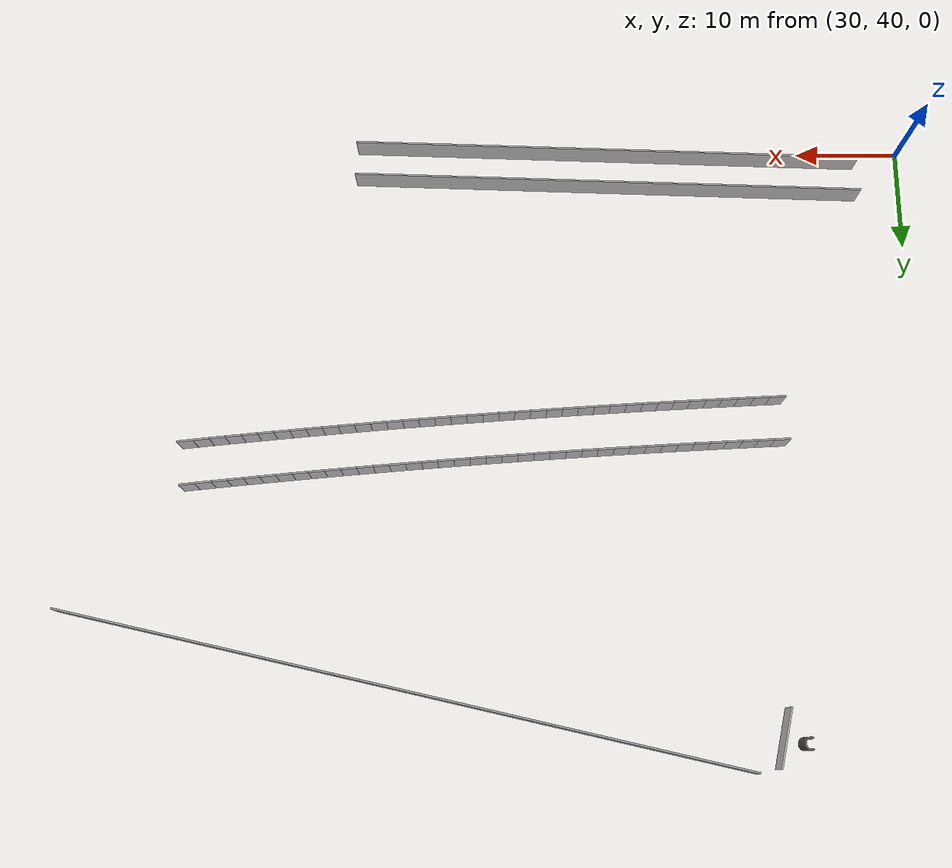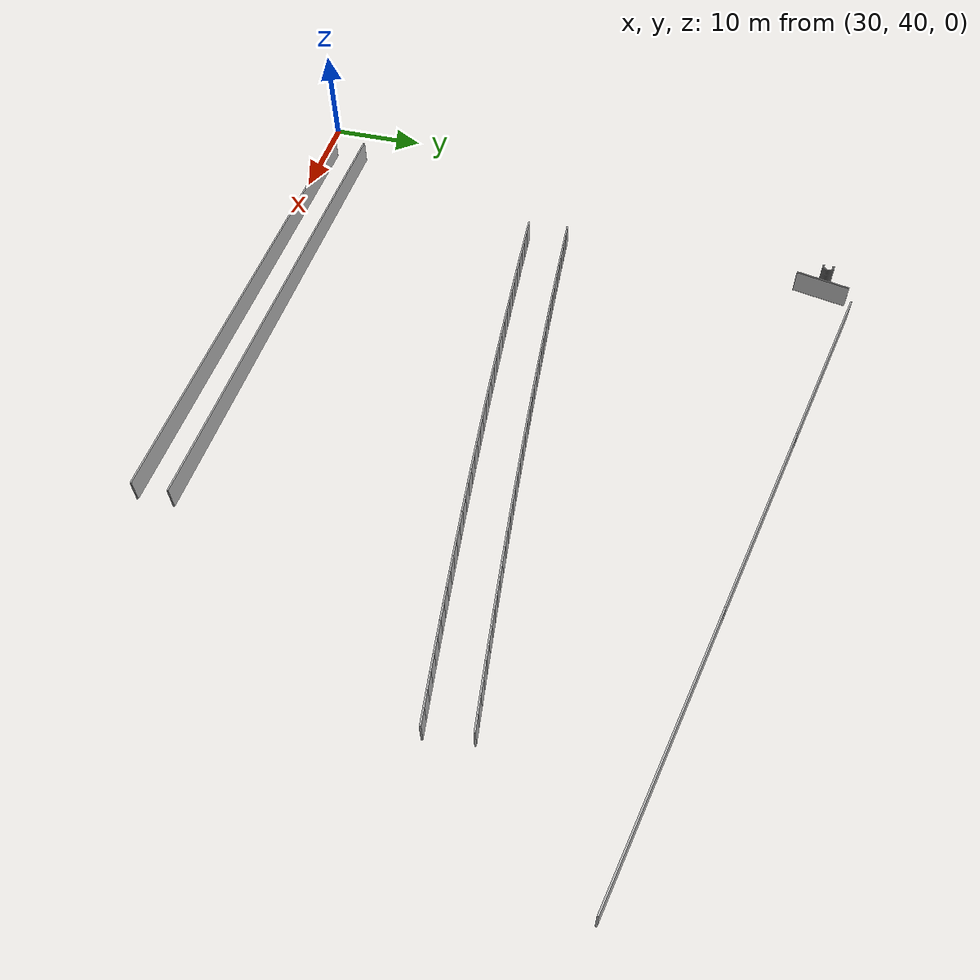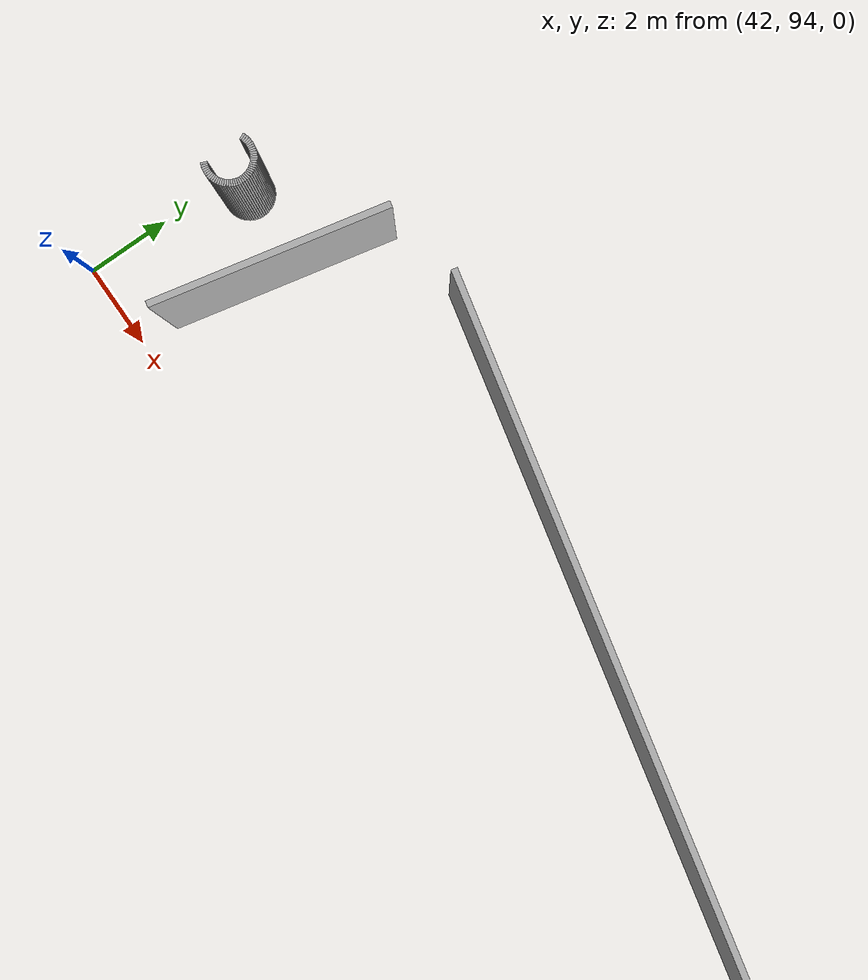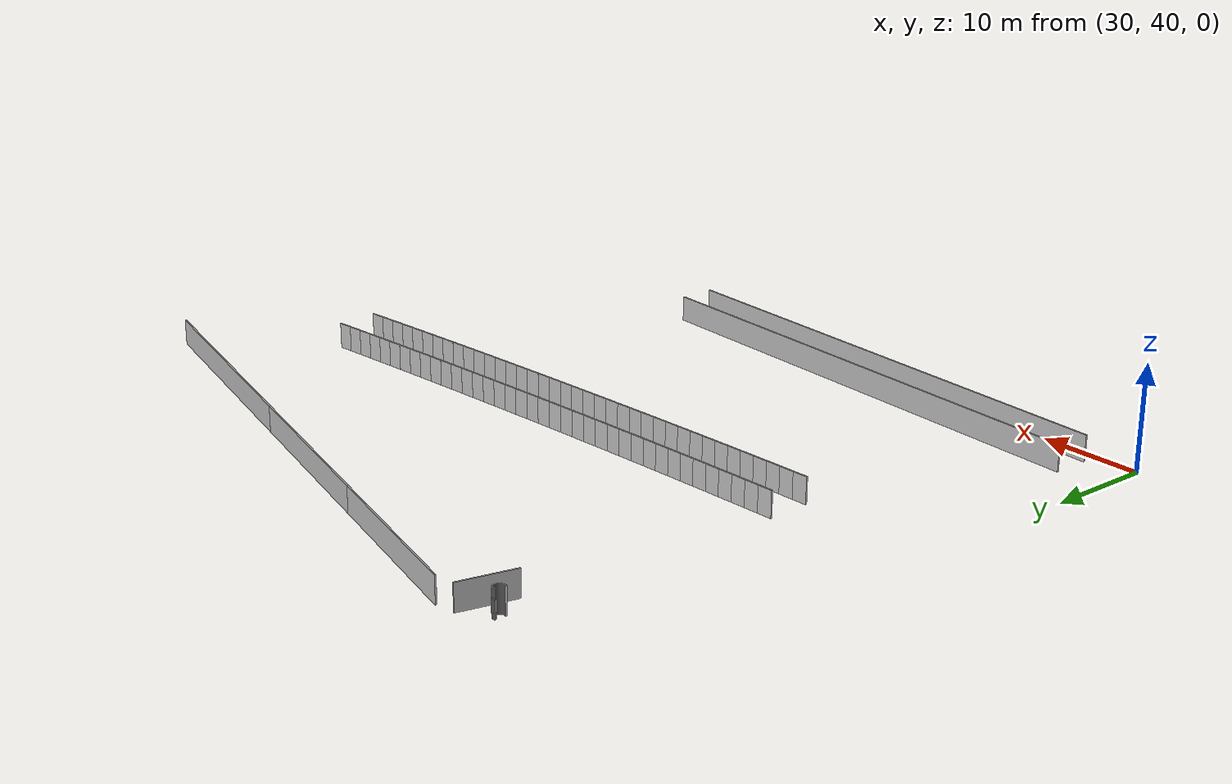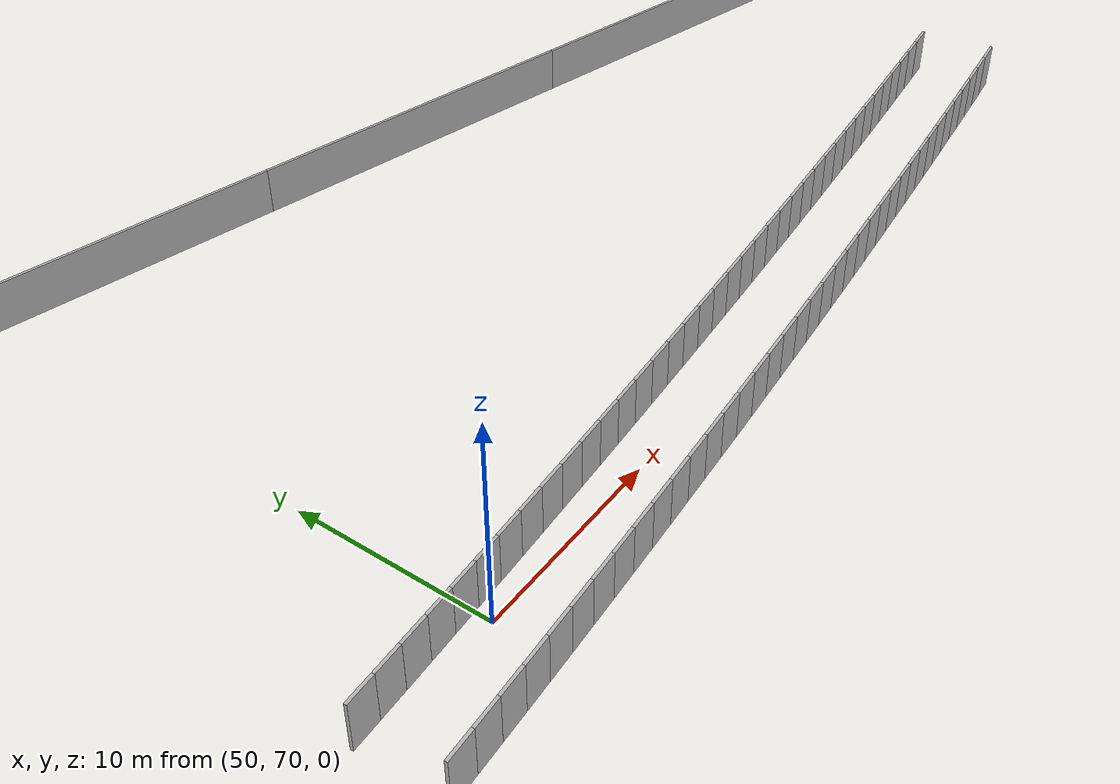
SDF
<sdf version="1.6">
 <model name="sps_1301">
  <static>1</static>
  <allow_auto_disable>0</allow_auto_disable>
  <link name="Wall237">
   <collision name="collision"><geometry><box><size>18.5004 0.15 2.5</size></box></geometry></collision>
   <visual name="visual">
    <geometry><box><size>18.5004 0.15 2.5</size></box></geometry>
    <transparency>0.0</transparency>
   </visual>
   <pose>56.1314 98.5066 1.25 0 0 -0.214248</pose>
  </link>
  <link name="Wall238">
   <collision name="collision"><geometry><box><size>19.751 0.15 2.5</size></box></geometry></collision>
   <visual name="visual">
    <geometry><box><size>19.751 0.15 2.5</size></box></geometry>
    <transparency>0.0</transparency>
   </visual>
   <pose>74.8198 94.4402 1.25 0 0 -0.214253</pose>
  </link>
  <link name="Wall239">
   <collision name="collision"><geometry><box><size>26.0944 0.15 2.5</size></box></geometry></collision>
   <visual name="visual">
    <geometry><box><size>26.0944 0.15 2.5</size></box></geometry>
    <transparency>0.0</transparency>
   </visual>
   <pose>97.2183 89.5664 1.25 0 0 -0.214253</pose>
  </link>
  <link name="Wall461">
   <collision name="collision"><geometry><box><size>50.0165 0.15 2.5</size></box></geometry></collision>
   <visual name="visual">
    <geometry><box><size>50.0165 0.15 2.5</size></box></geometry>
    <transparency>0.0</transparency>
   </visual>
   <pose>59.4694 40.8028 1.25 0 -0 3.11591</pose>
  </link>
  <link name="Wall464">
   <collision name="collision"><geometry><box><size>50.0165 0.15 2.5</size></box></geometry></collision>
   <visual name="visual">
    <geometry><box><size>50.0165 0.15 2.5</size></box></geometry>
    <transparency>0.0</transparency>
   </visual>
   <pose>59.4694 44.3038 1.25 0 0 -0.0256802</pose>
  </link>
  <link name="Wall697">
   <collision name="collision"><geometry><box><size>0.0454008 0.15 2.5</size></box></geometry></collision>
   <visual name="visual">
    <geometry><box><size>0.0454008 0.15 2.5</size></box></geometry>
    <transparency>0.0</transparency>
   </visual>
   <pose>42.9055 98.3673 1.25 0 0 -0.654794</pose>
  </link>
  <link name="Wall698">
   <collision name="collision"><geometry><box><size>0.0452735 0.15 2.5</size></box></geometry></collision>
   <visual name="visual">
    <geometry><box><size>0.0452735 0.15 2.5</size></box></geometry>
    <transparency>0.0</transparency>
   </visual>
   <pose>42.9402 98.3382 1.25 0 0 -0.741533</pose>
  </link>
  <link name="Wall699">
   <collision name="collision"><geometry><box><size>0.0454087 0.15 2.5</size></box></geometry></collision>
   <visual name="visual">
    <geometry><box><size>0.0454087 0.15 2.5</size></box></geometry>
    <transparency>0.0</transparency>
   </visual>
   <pose>42.9722 98.3061 1.25 0 0 -0.831987</pose>
  </link>
  <link name="Wall700">
   <collision name="collision"><geometry><box><size>0.0453637 0.15 2.5</size></box></geometry></collision>
   <visual name="visual">
    <geometry><box><size>0.0453637 0.15 2.5</size></box></geometry>
    <transparency>0.0</transparency>
   </visual>
   <pose>43.0012 98.2713 1.25 0 0 -0.91707</pose>
  </link>
  <link name="Wall701">
   <collision name="collision"><geometry><box><size>0.045342 0.15 2.5</size></box></geometry></collision>
   <visual name="visual">
    <geometry><box><size>0.045342 0.15 2.5</size></box></geometry>
    <transparency>0.0</transparency>
   </visual>
   <pose>43.0272 98.2342 1.25 0 0 -1.00221</pose>
  </link>
  <link name="Wall702">
   <collision name="collision"><geometry><box><size>0.0453724 0.15 2.5</size></box></geometry></collision>
   <visual name="visual">
    <geometry><box><size>0.0453724 0.15 2.5</size></box></geometry>
    <transparency>0.0</transparency>
   </visual>
   <pose>43.0499 98.195 1.25 0 0 -1.0897</pose>
  </link>
  <link name="Wall703">
   <collision name="collision"><geometry><box><size>0.0453827 0.15 2.5</size></box></geometry></collision>
   <visual name="visual">
    <geometry><box><size>0.0453827 0.15 2.5</size></box></geometry>
    <transparency>0.0</transparency>
   </visual>
   <pose>43.0691 98.1539 1.25 0 0 -1.1818</pose>
  </link>
  <link name="Wall704">
   <collision name="collision"><geometry><box><size>0.0453611 0.15 2.5</size></box></geometry></collision>
   <visual name="visual">
    <geometry><box><size>0.0453611 0.15 2.5</size></box></geometry>
    <transparency>0.0</transparency>
   </visual>
   <pose>43.0846 98.1113 1.25 0 0 -1.26181</pose>
  </link>
  <link name="Wall705">
   <collision name="collision"><geometry><box><size>0.0452165 0.15 2.5</size></box></geometry></collision>
   <visual name="visual">
    <geometry><box><size>0.0452165 0.15 2.5</size></box></geometry>
    <transparency>0.0</transparency>
   </visual>
   <pose>43.0962 98.0676 1.25 0 0 -1.35725</pose>
  </link>
  <link name="Wall706">
   <collision name="collision"><geometry><box><size>0.0453869 0.15 2.5</size></box></geometry></collision>
   <visual name="visual">
    <geometry><box><size>0.0453869 0.15 2.5</size></box></geometry>
    <transparency>0.0</transparency>
   </visual>
   <pose>43.1041 98.023 1.25 0 0 -1.43727</pose>
  </link>
  <link name="Wall707">
   <collision name="collision"><geometry><box><size>0.0454521 0.15 2.5</size></box></geometry></collision>
   <visual name="visual">
    <geometry><box><size>0.0454521 0.15 2.5</size></box></geometry>
    <transparency>0.0</transparency>
   </visual>
   <pose>43.1081 97.9778 1.25 0 0 -1.52781</pose>
  </link>
  <link name="Wall708">
   <collision name="collision"><geometry><box><size>0.0452692 0.15 2.5</size></box></geometry></collision>
   <visual name="visual">
    <geometry><box><size>0.0452692 0.15 2.5</size></box></geometry>
    <transparency>0.0</transparency>
   </visual>
   <pose>43.1081 97.9325 1.25 0 0 -1.61395</pose>
  </link>
  <link name="Wall709">
   <collision name="collision"><geometry><box><size>0.0453869 0.15 2.5</size></box></geometry></collision>
   <visual name="visual">
    <geometry><box><size>0.0453869 0.15 2.5</size></box></geometry>
    <transparency>0.0</transparency>
   </visual>
   <pose>43.1041 97.8874 1.25 0 0 -1.70433</pose>
  </link>
  <link name="Wall710">
   <collision name="collision"><geometry><box><size>0.0454345 0.15 2.5</size></box></geometry></collision>
   <visual name="visual">
    <geometry><box><size>0.0454345 0.15 2.5</size></box></geometry>
    <transparency>0.0</transparency>
   </visual>
   <pose>43.0962 97.8427 1.25 0 0 -1.78743</pose>
  </link>
  <link name="Wall711">
   <collision name="collision"><geometry><box><size>0.0453057 0.15 2.5</size></box></geometry></collision>
   <visual name="visual">
    <geometry><box><size>0.0453057 0.15 2.5</size></box></geometry>
    <transparency>0.0</transparency>
   </visual>
   <pose>43.0845 97.7989 1.25 0 0 -1.87593</pose>
  </link>
  <link name="Wall712">
   <collision name="collision"><geometry><box><size>0.0454525 0.15 2.5</size></box></geometry></collision>
   <visual name="visual">
    <geometry><box><size>0.0454525 0.15 2.5</size></box></geometry>
    <transparency>0.0</transparency>
   </visual>
   <pose>43.069 97.7563 1.25 0 0 -1.96352</pose>
  </link>
  <link name="Wall713">
   <collision name="collision"><geometry><box><size>0.0453724 0.15 2.5</size></box></geometry></collision>
   <visual name="visual">
    <geometry><box><size>0.0453724 0.15 2.5</size></box></geometry>
    <transparency>0.0</transparency>
   </visual>
   <pose>43.0498 97.7152 1.25 0 0 -2.05189</pose>
  </link>
  <link name="Wall714">
   <collision name="collision"><geometry><box><size>0.045342 0.15 2.5</size></box></geometry></collision>
   <visual name="visual">
    <geometry><box><size>0.045342 0.15 2.5</size></box></geometry>
    <transparency>0.0</transparency>
   </visual>
   <pose>43.0271 97.676 1.25 0 0 -2.13938</pose>
  </link>
  <link name="Wall715">
   <collision name="collision"><geometry><box><size>0.0453637 0.15 2.5</size></box></geometry></collision>
   <visual name="visual">
    <geometry><box><size>0.0453637 0.15 2.5</size></box></geometry>
    <transparency>0.0</transparency>
   </visual>
   <pose>43.0011 97.6389 1.25 0 0 -2.22452</pose>
  </link>
  <link name="Wall716">
   <collision name="collision"><geometry><box><size>0.0453148 0.15 2.5</size></box></geometry></collision>
   <visual name="visual">
    <geometry><box><size>0.0453148 0.15 2.5</size></box></geometry>
    <transparency>0.0</transparency>
   </visual>
   <pose>42.9719 97.6042 1.25 0 0 -2.31332</pose>
  </link>
  <link name="Wall717">
   <collision name="collision"><geometry><box><size>0.0453974 0.15 2.5</size></box></geometry></collision>
   <visual name="visual">
    <geometry><box><size>0.0453974 0.15 2.5</size></box></geometry>
    <transparency>0.0</transparency>
   </visual>
   <pose>42.9399 97.5721 1.25 0 0 -2.39709</pose>
  </link>
  <link name="Wall718">
   <collision name="collision"><geometry><box><size>0.0454008 0.15 2.5</size></box></geometry></collision>
   <visual name="visual">
    <geometry><box><size>0.0454008 0.15 2.5</size></box></geometry>
    <transparency>0.0</transparency>
   </visual>
   <pose>42.9052 97.5429 1.25 0 0 -2.4868</pose>
  </link>
  <link name="Wall719">
   <collision name="collision"><geometry><box><size>0.0453659 0.15 2.5</size></box></geometry></collision>
   <visual name="visual">
    <geometry><box><size>0.0453659 0.15 2.5</size></box></geometry>
    <transparency>0.0</transparency>
   </visual>
   <pose>42.868 97.517 1.25 0 0 -2.57971</pose>
  </link>
  <link name="Wall720">
   <collision name="collision"><geometry><box><size>0.0453183 0.15 2.5</size></box></geometry></collision>
   <visual name="visual">
    <geometry><box><size>0.0453183 0.15 2.5</size></box></geometry>
    <transparency>0.0</transparency>
   </visual>
   <pose>42.8288 97.4944 1.25 0 0 -2.65987</pose>
  </link>
  <link name="Wall721">
   <collision name="collision"><geometry><box><size>0.0454525 0.15 2.5</size></box></geometry></collision>
   <visual name="visual">
    <geometry><box><size>0.0454525 0.15 2.5</size></box></geometry>
    <transparency>0.0</transparency>
   </visual>
   <pose>42.7877 97.4752 1.25 0 0 -2.74887</pose>
  </link>
  <link name="Wall722">
   <collision name="collision"><geometry><box><size>0.0453057 0.15 2.5</size></box></geometry></collision>
   <visual name="visual">
    <geometry><box><size>0.0453057 0.15 2.5</size></box></geometry>
    <transparency>0.0</transparency>
   </visual>
   <pose>42.7451 97.4597 1.25 0 0 -2.83646</pose>
  </link>
  <link name="Wall723">
   <collision name="collision"><geometry><box><size>0.0452689 0.15 2.5</size></box></geometry></collision>
   <visual name="visual">
    <geometry><box><size>0.0452689 0.15 2.5</size></box></geometry>
    <transparency>0.0</transparency>
   </visual>
   <pose>42.7014 97.448 1.25 0 0 -2.92278</pose>
  </link>
  <link name="Wall724">
   <collision name="collision"><geometry><box><size>0.0454156 0.15 2.5</size></box></geometry></collision>
   <visual name="visual">
    <geometry><box><size>0.0454156 0.15 2.5</size></box></geometry>
    <transparency>0.0</transparency>
   </visual>
   <pose>42.6568 97.4402 1.25 0 0 -3.01357</pose>
  </link>
  <link name="Wall725">
   <collision name="collision"><geometry><box><size>0.0454521 0.15 2.5</size></box></geometry></collision>
   <visual name="visual">
    <geometry><box><size>0.0454521 0.15 2.5</size></box></geometry>
    <transparency>0.0</transparency>
   </visual>
   <pose>42.6115 97.4363 1.25 0 0 -3.09861</pose>
  </link>
  <link name="Wall726">
   <collision name="collision"><geometry><box><size>0.0452082 0.15 2.5</size></box></geometry></collision>
   <visual name="visual">
    <geometry><box><size>0.0452082 0.15 2.5</size></box></geometry>
    <transparency>0.0</transparency>
   </visual>
   <pose>42.5662 97.4363 1.25 0 -0 3.09838</pose>
  </link>
  <link name="Wall727">
   <collision name="collision"><geometry><box><size>0.0453551 0.15 2.5</size></box></geometry></collision>
   <visual name="visual">
    <geometry><box><size>0.0453551 0.15 2.5</size></box></geometry>
    <transparency>0.0</transparency>
   </visual>
   <pose>42.5212 97.4402 1.25 0 -0 3.0134</pose>
  </link>
  <link name="Wall728">
   <collision name="collision"><geometry><box><size>0.0455471 0.15 2.5</size></box></geometry></collision>
   <visual name="visual">
    <geometry><box><size>0.0455471 0.15 2.5</size></box></geometry>
    <transparency>0.0</transparency>
   </visual>
   <pose>42.4765 97.4481 1.25 0 -0 2.92002</pose>
  </link>
  <link name="Wall729">
   <collision name="collision"><geometry><box><size>0.0453057 0.15 2.5</size></box></geometry></collision>
   <visual name="visual">
    <geometry><box><size>0.0453057 0.15 2.5</size></box></geometry>
    <transparency>0.0</transparency>
   </visual>
   <pose>42.4326 97.4599 1.25 0 -0 2.83646</pose>
  </link>
  <link name="Wall730">
   <collision name="collision"><geometry><box><size>0.0454525 0.15 2.5</size></box></geometry></collision>
   <visual name="visual">
    <geometry><box><size>0.0454525 0.15 2.5</size></box></geometry>
    <transparency>0.0</transparency>
   </visual>
   <pose>42.39 97.4754 1.25 0 -0 2.74887</pose>
  </link>
  <link name="Wall757">
   <collision name="collision"><geometry><box><size>0.0453069 0.15 2.5</size></box></geometry></collision>
   <visual name="visual">
    <geometry><box><size>0.0453069 0.15 2.5</size></box></geometry>
    <transparency>0.0</transparency>
   </visual>
   <pose>42.3904 98.4352 1.25 0 -0 0.395517</pose>
  </link>
  <link name="Wall758">
   <collision name="collision"><geometry><box><size>0.0454622 0.15 2.5</size></box></geometry></collision>
   <visual name="visual">
    <geometry><box><size>0.0454622 0.15 2.5</size></box></geometry>
    <transparency>0.0</transparency>
   </visual>
   <pose>42.433 98.4507 1.25 0 -0 0.302645</pose>
  </link>
  <link name="Wall759">
   <collision name="collision"><geometry><box><size>0.0452689 0.15 2.5</size></box></geometry></collision>
   <visual name="visual">
    <geometry><box><size>0.0452689 0.15 2.5</size></box></geometry>
    <transparency>0.0</transparency>
   </visual>
   <pose>42.4768 98.4624 1.25 0 -0 0.218815</pose>
  </link>
  <link name="Wall760">
   <collision name="collision"><geometry><box><size>0.0453788 0.15 2.5</size></box></geometry></collision>
   <visual name="visual">
    <geometry><box><size>0.0453788 0.15 2.5</size></box></geometry>
    <transparency>0.0</transparency>
   </visual>
   <pose>42.5214 98.4703 1.25 0 -0 0.132196</pose>
  </link>
  <link name="Wall761">
   <collision name="collision"><geometry><box><size>0.0454548 0.15 2.5</size></box></geometry></collision>
   <visual name="visual">
    <geometry><box><size>0.0454548 0.15 2.5</size></box></geometry>
    <transparency>0.0</transparency>
   </visual>
   <pose>42.5666 98.4743 1.25 0 -0 0.0443258</pose>
  </link>
  <link name="Wall762">
   <collision name="collision"><geometry><box><size>0.0452719 0.15 2.5</size></box></geometry></collision>
   <visual name="visual">
    <geometry><box><size>0.0452719 0.15 2.5</size></box></geometry>
    <transparency>0.0</transparency>
   </visual>
   <pose>42.6119 98.4743 1.25 0 0 -0.044505</pose>
  </link>
  <link name="Wall763">
   <collision name="collision"><geometry><box><size>0.0453788 0.15 2.5</size></box></geometry></collision>
   <visual name="visual">
    <geometry><box><size>0.0453788 0.15 2.5</size></box></geometry>
    <transparency>0.0</transparency>
   </visual>
   <pose>42.657 98.4703 1.25 0 0 -0.132196</pose>
  </link>
  <link name="Wall764">
   <collision name="collision"><geometry><box><size>0.0454476 0.15 2.5</size></box></geometry></collision>
   <visual name="visual">
    <geometry><box><size>0.0454476 0.15 2.5</size></box></geometry>
    <transparency>0.0</transparency>
   </visual>
   <pose>42.7017 98.4624 1.25 0 0 -0.217941</pose>
  </link>
  <link name="Wall765">
   <collision name="collision"><geometry><box><size>0.0452874 0.15 2.5</size></box></geometry></collision>
   <visual name="visual">
    <geometry><box><size>0.0452874 0.15 2.5</size></box></geometry>
    <transparency>0.0</transparency>
   </visual>
   <pose>42.7454 98.4507 1.25 0 0 -0.30385</pose>
  </link>
  <link name="Wall766">
   <collision name="collision"><geometry><box><size>0.0453069 0.15 2.5</size></box></geometry></collision>
   <visual name="visual">
    <geometry><box><size>0.0453069 0.15 2.5</size></box></geometry>
    <transparency>0.0</transparency>
   </visual>
   <pose>42.788 98.4352 1.25 0 0 -0.395517</pose>
  </link>
  <link name="Wall767">
   <collision name="collision"><geometry><box><size>0.0455348 0.15 2.5</size></box></geometry></collision>
   <visual name="visual">
    <geometry><box><size>0.0455348 0.15 2.5</size></box></geometry>
    <transparency>0.0</transparency>
   </visual>
   <pose>42.8291 98.416 1.25 0 0 -0.479234</pose>
  </link>
  <link name="Wall768">
   <collision name="collision"><geometry><box><size>0.0453092 0.15 2.5</size></box></geometry></collision>
   <visual name="visual">
    <geometry><box><size>0.0453092 0.15 2.5</size></box></geometry>
    <transparency>0.0</transparency>
   </visual>
   <pose>42.8684 98.3933 1.25 0 0 -0.567452</pose>
  </link>
  <link name="Wall987">
   <collision name="collision"><geometry><box><size>5.43506 0.15 2.5</size></box></geometry></collision>
   <visual name="visual">
    <geometry><box><size>5.43506 0.15 2.5</size></box></geometry>
    <transparency>0.0</transparency>
   </visual>
   <pose>44.6872 97.5127 1.25 0 0 -1.78505</pose>
  </link>
  <link name="Wall3740">
   <collision name="collision"><geometry><box><size>1.49639 0.15 2.5</size></box></geometry></collision>
   <visual name="visual">
    <geometry><box><size>1.49639 0.15 2.5</size></box></geometry>
    <transparency>0.0</transparency>
   </visual>
   <pose>43.5595 70.548 1.25 0 -0 0.0563175</pose>
  </link>
  <link name="Wall3741">
   <collision name="collision"><geometry><box><size>1.49648 0.15 2.5</size></box></geometry></collision>
   <visual name="visual">
    <geometry><box><size>1.49648 0.15 2.5</size></box></geometry>
    <transparency>0.0</transparency>
   </visual>
   <pose>45.0535 70.6335 1.25 0 -0 0.0580301</pose>
  </link>
  <link name="Wall3742">
   <collision name="collision"><geometry><box><size>1.49648 0.15 2.5</size></box></geometry></collision>
   <visual name="visual">
    <geometry><box><size>1.49648 0.15 2.5</size></box></geometry>
    <transparency>0.0</transparency>
   </visual>
   <pose>46.5474 70.7214 1.25 0 -0 0.0595007</pose>
  </link>
  <link name="Wall3743">
   <collision name="collision"><geometry><box><size>1.49676 0.15 2.5</size></box></geometry></collision>
   <visual name="visual">
    <geometry><box><size>1.49676 0.15 2.5</size></box></geometry>
    <transparency>0.0</transparency>
   </visual>
   <pose>48.0413 70.8117 1.25 0 -0 0.0612462</pose>
  </link>
  <link name="Wall3744">
   <collision name="collision"><geometry><box><size>1.49635 0.15 2.5</size></box></geometry></collision>
   <visual name="visual">
    <geometry><box><size>1.49635 0.15 2.5</size></box></geometry>
    <transparency>0.0</transparency>
   </visual>
   <pose>49.5349 70.9044 1.25 0 -0 0.0627343</pose>
  </link>
  <link name="Wall3745">
   <collision name="collision"><geometry><box><size>1.49669 0.15 2.5</size></box></geometry></collision>
   <visual name="visual">
    <geometry><box><size>1.49669 0.15 2.5</size></box></geometry>
    <transparency>0.0</transparency>
   </visual>
   <pose>51.0284 70.9994 1.25 0 -0 0.0643139</pose>
  </link>
  <link name="Wall3746">
   <collision name="collision"><geometry><box><size>1.49646 0.15 2.5</size></box></geometry></collision>
   <visual name="visual">
    <geometry><box><size>1.49646 0.15 2.5</size></box></geometry>
    <transparency>0.0</transparency>
   </visual>
   <pose>52.5218 71.0967 1.25 0 -0 0.0657949</pose>
  </link>
  <link name="Wall3747">
   <collision name="collision"><geometry><box><size>1.49663 0.15 2.5</size></box></geometry></collision>
   <visual name="visual">
    <geometry><box><size>1.49663 0.15 2.5</size></box></geometry>
    <transparency>0.0</transparency>
   </visual>
   <pose>54.0151 71.1963 1.25 0 -0 0.0674227</pose>
  </link>
  <link name="Wall3748">
   <collision name="collision"><geometry><box><size>1.49654 0.15 2.5</size></box></geometry></collision>
   <visual name="visual">
    <geometry><box><size>1.49654 0.15 2.5</size></box></geometry>
    <transparency>0.0</transparency>
   </visual>
   <pose>55.5082 71.2983 1.25 0 -0 0.06898</pose>
  </link>
  <link name="Wall3749">
   <collision name="collision"><geometry><box><size>1.49636 0.15 2.5</size></box></geometry></collision>
   <visual name="visual">
    <geometry><box><size>1.49636 0.15 2.5</size></box></geometry>
    <transparency>0.0</transparency>
   </visual>
   <pose>57.001 71.4028 1.25 0 -0 0.0707873</pose>
  </link>
  <link name="Wall3750">
   <collision name="collision"><geometry><box><size>1.49645 0.15 2.5</size></box></geometry></collision>
   <visual name="visual">
    <geometry><box><size>1.49645 0.15 2.5</size></box></geometry>
    <transparency>0.0</transparency>
   </visual>
   <pose>58.4936 71.5097 1.25 0 -0 0.0722141</pose>
  </link>
  <link name="Wall3751">
   <collision name="collision"><geometry><box><size>1.49669 0.15 2.5</size></box></geometry></collision>
   <visual name="visual">
    <geometry><box><size>1.49669 0.15 2.5</size></box></geometry>
    <transparency>0.0</transparency>
   </visual>
   <pose>59.9861 71.6189 1.25 0 -0 0.0738381</pose>
  </link>
  <link name="Wall3752">
   <collision name="collision"><geometry><box><size>1.49643 0.15 2.5</size></box></geometry></collision>
   <visual name="visual">
    <geometry><box><size>1.49643 0.15 2.5</size></box></geometry>
    <transparency>0.0</transparency>
   </visual>
   <pose>61.4785 71.7304 1.25 0 -0 0.0753235</pose>
  </link>
  <link name="Wall3753">
   <collision name="collision"><geometry><box><size>1.49669 0.15 2.5</size></box></geometry></collision>
   <visual name="visual">
    <geometry><box><size>1.49669 0.15 2.5</size></box></geometry>
    <transparency>0.0</transparency>
   </visual>
   <pose>62.9708 71.8443 1.25 0 -0 0.0770284</pose>
  </link>
  <link name="Wall3754">
   <collision name="collision"><geometry><box><size>1.49638 0.15 2.5</size></box></geometry></collision>
   <visual name="visual">
    <geometry><box><size>1.49638 0.15 2.5</size></box></geometry>
    <transparency>0.0</transparency>
   </visual>
   <pose>64.4628 71.9606 1.25 0 -0 0.0785582</pose>
  </link>
  <link name="Wall3755">
   <collision name="collision"><geometry><box><size>1.49662 0.15 2.5</size></box></geometry></collision>
   <visual name="visual">
    <geometry><box><size>1.49662 0.15 2.5</size></box></geometry>
    <transparency>0.0</transparency>
   </visual>
   <pose>65.9546 72.0792 1.25 0 -0 0.0801406</pose>
  </link>
  <link name="Wall3756">
   <collision name="collision"><geometry><box><size>1.49659 0.15 2.5</size></box></geometry></collision>
   <visual name="visual">
    <geometry><box><size>1.49659 0.15 2.5</size></box></geometry>
    <transparency>0.0</transparency>
   </visual>
   <pose>67.4463 72.2003 1.25 0 -0 0.081861</pose>
  </link>
  <link name="Wall3757">
   <collision name="collision"><geometry><box><size>1.49657 0.15 2.5</size></box></geometry></collision>
   <visual name="visual">
    <geometry><box><size>1.49657 0.15 2.5</size></box></geometry>
    <transparency>0.0</transparency>
   </visual>
   <pose>68.9377 72.3237 1.25 0 -0 0.0832124</pose>
  </link>
  <link name="Wall3758">
   <collision name="collision"><geometry><box><size>1.49661 0.15 2.5</size></box></geometry></collision>
   <visual name="visual">
    <geometry><box><size>1.49661 0.15 2.5</size></box></geometry>
    <transparency>0.0</transparency>
   </visual>
   <pose>70.429 72.4494 1.25 0 -0 0.0849701</pose>
  </link>
  <link name="Wall3759">
   <collision name="collision"><geometry><box><size>1.49637 0.15 2.5</size></box></geometry></collision>
   <visual name="visual">
    <geometry><box><size>1.49637 0.15 2.5</size></box></geometry>
    <transparency>0.0</transparency>
   </visual>
   <pose>71.92 72.5775 1.25 0 -0 0.0864574</pose>
  </link>
  <link name="Wall3760">
   <collision name="collision"><geometry><box><size>1.49664 0.15 2.5</size></box></geometry></collision>
   <visual name="visual">
    <geometry><box><size>1.49664 0.15 2.5</size></box></geometry>
    <transparency>0.0</transparency>
   </visual>
   <pose>73.4108 72.7079 1.25 0 -0 0.0880384</pose>
  </link>
  <link name="Wall3761">
   <collision name="collision"><geometry><box><size>1.49661 0.15 2.5</size></box></geometry></collision>
   <visual name="visual">
    <geometry><box><size>1.49661 0.15 2.5</size></box></geometry>
    <transparency>0.0</transparency>
   </visual>
   <pose>74.9016 72.8407 1.25 0 -0 0.0896371</pose>
  </link>
  <link name="Wall3762">
   <collision name="collision"><geometry><box><size>1.49659 0.15 2.5</size></box></geometry></collision>
   <visual name="visual">
    <geometry><box><size>1.49659 0.15 2.5</size></box></geometry>
    <transparency>0.0</transparency>
   </visual>
   <pose>76.3921 72.9759 1.25 0 -0 0.0912765</pose>
  </link>
  <link name="Wall3763">
   <collision name="collision"><geometry><box><size>1.49648 0.15 2.5</size></box></geometry></collision>
   <visual name="visual">
    <geometry><box><size>1.49648 0.15 2.5</size></box></geometry>
    <transparency>0.0</transparency>
   </visual>
   <pose>77.8823 73.1134 1.25 0 -0 0.0927573</pose>
  </link>
  <link name="Wall3764">
   <collision name="collision"><geometry><box><size>1.49642 0.15 2.5</size></box></geometry></collision>
   <visual name="visual">
    <geometry><box><size>1.49642 0.15 2.5</size></box></geometry>
    <transparency>0.0</transparency>
   </visual>
   <pose>79.3722 73.2533 1.25 0 -0 0.0944819</pose>
  </link>
  <link name="Wall3765">
   <collision name="collision"><geometry><box><size>1.49651 0.15 2.5</size></box></geometry></collision>
   <visual name="visual">
    <geometry><box><size>1.49651 0.15 2.5</size></box></geometry>
    <transparency>0.0</transparency>
   </visual>
   <pose>80.8618 73.3956 1.25 0 -0 0.0959919</pose>
  </link>
  <link name="Wall3766">
   <collision name="collision"><geometry><box><size>1.4965 0.15 2.5</size></box></geometry></collision>
   <visual name="visual">
    <geometry><box><size>1.4965 0.15 2.5</size></box></geometry>
    <transparency>0.0</transparency>
   </visual>
   <pose>82.3513 73.5402 1.25 0 -0 0.0975908</pose>
  </link>
  <link name="Wall3767">
   <collision name="collision"><geometry><box><size>1.49655 0.15 2.5</size></box></geometry></collision>
   <visual name="visual">
    <geometry><box><size>1.49655 0.15 2.5</size></box></geometry>
    <transparency>0.0</transparency>
   </visual>
   <pose>83.8406 73.6872 1.25 0 -0 0.0991857</pose>
  </link>
  <link name="Wall3768">
   <collision name="collision"><geometry><box><size>1.49661 0.15 2.5</size></box></geometry></collision>
   <visual name="visual">
    <geometry><box><size>1.49661 0.15 2.5</size></box></geometry>
    <transparency>0.0</transparency>
   </visual>
   <pose>85.3297 73.8366 1.25 0 -0 0.100781</pose>
  </link>
  <link name="Wall3769">
   <collision name="collision"><geometry><box><size>1.49641 0.15 2.5</size></box></geometry></collision>
   <visual name="visual">
    <geometry><box><size>1.49641 0.15 2.5</size></box></geometry>
    <transparency>0.0</transparency>
   </visual>
   <pose>86.8185 73.9883 1.25 0 -0 0.102311</pose>
  </link>
  <link name="Wall3770">
   <collision name="collision"><geometry><box><size>1.49647 0.15 2.5</size></box></geometry></collision>
   <visual name="visual">
    <geometry><box><size>1.49647 0.15 2.5</size></box></geometry>
    <transparency>0.0</transparency>
   </visual>
   <pose>88.307 74.1423 1.25 0 -0 0.103865</pose>
  </link>
  <link name="Wall3771">
   <collision name="collision"><geometry><box><size>1.49655 0.15 2.5</size></box></geometry></collision>
   <visual name="visual">
    <geometry><box><size>1.49655 0.15 2.5</size></box></geometry>
    <transparency>0.0</transparency>
   </visual>
   <pose>89.7953 74.2987 1.25 0 -0 0.105541</pose>
  </link>
  <link name="Wall3772">
   <collision name="collision"><geometry><box><size>1.49653 0.15 2.5</size></box></geometry></collision>
   <visual name="visual">
    <geometry><box><size>1.49653 0.15 2.5</size></box></geometry>
    <transparency>0.0</transparency>
   </visual>
   <pose>91.2834 74.4574 1.25 0 -0 0.106978</pose>
  </link>
  <link name="Wall3773">
   <collision name="collision"><geometry><box><size>1.49669 0.15 2.5</size></box></geometry></collision>
   <visual name="visual">
    <geometry><box><size>1.49669 0.15 2.5</size></box></geometry>
    <transparency>0.0</transparency>
   </visual>
   <pose>92.7714 74.6185 1.25 0 -0 0.10873</pose>
  </link>
  <link name="Wall3774">
   <collision name="collision"><geometry><box><size>1.49644 0.15 2.5</size></box></geometry></collision>
   <visual name="visual">
    <geometry><box><size>1.49644 0.15 2.5</size></box></geometry>
    <transparency>0.0</transparency>
   </visual>
   <pose>94.259 74.782 1.25 0 -0 0.110184</pose>
  </link>
  <link name="Wall3775">
   <collision name="collision"><geometry><box><size>1.49653 0.15 2.5</size></box></geometry></collision>
   <visual name="visual">
    <geometry><box><size>1.49653 0.15 2.5</size></box></geometry>
    <transparency>0.0</transparency>
   </visual>
   <pose>95.7462 74.9478 1.25 0 -0 0.111819</pose>
  </link>
  <link name="Wall3776">
   <collision name="collision"><geometry><box><size>1.49662 0.15 2.5</size></box></geometry></collision>
   <visual name="visual">
    <geometry><box><size>1.49662 0.15 2.5</size></box></geometry>
    <transparency>0.0</transparency>
   </visual>
   <pose>97.2333 75.116 1.25 0 -0 0.113454</pose>
  </link>
  <link name="Wall3777">
   <collision name="collision"><geometry><box><size>1.49653 0.15 2.5</size></box></geometry></collision>
   <visual name="visual">
    <geometry><box><size>1.49653 0.15 2.5</size></box></geometry>
    <transparency>0.0</transparency>
   </visual>
   <pose>98.7201 75.2866 1.25 0 -0 0.115062</pose>
  </link>
  <link name="Wall7515">
   <collision name="collision"><geometry><box><size>1.50294 0.15 2.5</size></box></geometry></collision>
   <visual name="visual">
    <geometry><box><size>1.50294 0.15 2.5</size></box></geometry>
    <transparency>0.0</transparency>
   </visual>
   <pose>43.796 66.4143 1.25 0 -0 0.0564379</pose>
  </link>
  <link name="Wall7516">
   <collision name="collision"><geometry><box><size>1.50313 0.15 2.5</size></box></geometry></collision>
   <visual name="visual">
    <geometry><box><size>1.50313 0.15 2.5</size></box></geometry>
    <transparency>0.0</transparency>
   </visual>
   <pose>45.2965 66.5002 1.25 0 -0 0.0579356</pose>
  </link>
  <link name="Wall7517">
   <collision name="collision"><geometry><box><size>1.50328 0.15 2.5</size></box></geometry></collision>
   <visual name="visual">
    <geometry><box><size>1.50328 0.15 2.5</size></box></geometry>
    <transparency>0.0</transparency>
   </visual>
   <pose>46.7971 66.5885 1.25 0 -0 0.059638</pose>
  </link>
  <link name="Wall7518">
   <collision name="collision"><geometry><box><size>1.503 0.15 2.5</size></box></geometry></collision>
   <visual name="visual">
    <geometry><box><size>1.503 0.15 2.5</size></box></geometry>
    <transparency>0.0</transparency>
   </visual>
   <pose>48.2975 66.6793 1.25 0 -0 0.0612358</pose>
  </link>
  <link name="Wall7519">
   <collision name="collision"><geometry><box><size>1.5032 0.15 2.5</size></box></geometry></collision>
   <visual name="visual">
    <geometry><box><size>1.5032 0.15 2.5</size></box></geometry>
    <transparency>0.0</transparency>
   </visual>
   <pose>49.7978 66.7724 1.25 0 -0 0.0626924</pose>
  </link>
  <link name="Wall7520">
   <collision name="collision"><geometry><box><size>1.50311 0.15 2.5</size></box></geometry></collision>
   <visual name="visual">
    <geometry><box><size>1.50311 0.15 2.5</size></box></geometry>
    <transparency>0.0</transparency>
   </visual>
   <pose>51.2979 66.8678 1.25 0 -0 0.0643236</pose>
  </link>
  <link name="Wall7521">
   <collision name="collision"><geometry><box><size>1.50301 0.15 2.5</size></box></geometry></collision>
   <visual name="visual">
    <geometry><box><size>1.50301 0.15 2.5</size></box></geometry>
    <transparency>0.0</transparency>
   </visual>
   <pose>52.7978 66.9655 1.25 0 -0 0.0657929</pose>
  </link>
  <link name="Wall7522">
   <collision name="collision"><geometry><box><size>1.50306 0.15 2.5</size></box></geometry></collision>
   <visual name="visual">
    <geometry><box><size>1.50306 0.15 2.5</size></box></geometry>
    <transparency>0.0</transparency>
   </visual>
   <pose>54.2974 67.0656 1.25 0 -0 0.0675001</pose>
  </link>
  <link name="Wall7523">
   <collision name="collision"><geometry><box><size>1.50296 0.15 2.5</size></box></geometry></collision>
   <visual name="visual">
    <geometry><box><size>1.50296 0.15 2.5</size></box></geometry>
    <transparency>0.0</transparency>
   </visual>
   <pose>55.797 67.1681 1.25 0 -0 0.0689696</pose>
  </link>
  <link name="Wall7524">
   <collision name="collision"><geometry><box><size>1.50315 0.15 2.5</size></box></geometry></collision>
   <visual name="visual">
    <geometry><box><size>1.50315 0.15 2.5</size></box></geometry>
    <transparency>0.0</transparency>
   </visual>
   <pose>57.2963 67.273 1.25 0 -0 0.0707115</pose>
  </link>
  <link name="Wall7525">
   <collision name="collision"><geometry><box><size>1.50312 0.15 2.5</size></box></geometry></collision>
   <visual name="visual">
    <geometry><box><size>1.50312 0.15 2.5</size></box></geometry>
    <transparency>0.0</transparency>
   </visual>
   <pose>58.7956 67.3803 1.25 0 -0 0.0721783</pose>
  </link>
  <link name="Wall7526">
   <collision name="collision"><geometry><box><size>1.50313 0.15 2.5</size></box></geometry></collision>
   <visual name="visual">
    <geometry><box><size>1.50313 0.15 2.5</size></box></geometry>
    <transparency>0.0</transparency>
   </visual>
   <pose>60.2948 67.49 1.25 0 -0 0.0739285</pose>
  </link>
  <link name="Wall7527">
   <collision name="collision"><geometry><box><size>1.50305 0.15 2.5</size></box></geometry></collision>
   <visual name="visual">
    <geometry><box><size>1.50305 0.15 2.5</size></box></geometry>
    <transparency>0.0</transparency>
   </visual>
   <pose>61.7937 67.6021 1.25 0 -0 0.0753984</pose>
  </link>
  <link name="Wall7528">
   <collision name="collision"><geometry><box><size>1.50322 0.15 2.5</size></box></geometry></collision>
   <visual name="visual">
    <geometry><box><size>1.50322 0.15 2.5</size></box></geometry>
    <transparency>0.0</transparency>
   </visual>
   <pose>63.2924 67.7164 1.25 0 -0 0.076856</pose>
  </link>
  <link name="Wall7529">
   <collision name="collision"><geometry><box><size>1.50305 0.15 2.5</size></box></geometry></collision>
   <visual name="visual">
    <geometry><box><size>1.50305 0.15 2.5</size></box></geometry>
    <transparency>0.0</transparency>
   </visual>
   <pose>64.791 67.8331 1.25 0 -0 0.0785752</pose>
  </link>
  <link name="Wall7530">
   <collision name="collision"><geometry><box><size>1.50306 0.15 2.5</size></box></geometry></collision>
   <visual name="visual">
    <geometry><box><size>1.50306 0.15 2.5</size></box></geometry>
    <transparency>0.0</transparency>
   </visual>
   <pose>66.2894 67.9523 1.25 0 -0 0.0801635</pose>
  </link>
  <link name="Wall7531">
   <collision name="collision"><geometry><box><size>1.50301 0.15 2.5</size></box></geometry></collision>
   <visual name="visual">
    <geometry><box><size>1.50301 0.15 2.5</size></box></geometry>
    <transparency>0.0</transparency>
   </visual>
   <pose>67.7875 68.0739 1.25 0 -0 0.0817957</pose>
  </link>
  <link name="Wall7532">
   <collision name="collision"><geometry><box><size>1.50319 0.15 2.5</size></box></geometry></collision>
   <visual name="visual">
    <geometry><box><size>1.50319 0.15 2.5</size></box></geometry>
    <transparency>0.0</transparency>
   </visual>
   <pose>69.2855 68.1978 1.25 0 -0 0.0832525</pose>
  </link>
  <link name="Wall7533">
   <collision name="collision"><geometry><box><size>1.50305 0.15 2.5</size></box></geometry></collision>
   <visual name="visual">
    <geometry><box><size>1.50305 0.15 2.5</size></box></geometry>
    <transparency>0.0</transparency>
   </visual>
   <pose>70.7833 68.3241 1.25 0 -0 0.0850128</pose>
  </link>
  <link name="Wall7534">
   <collision name="collision"><geometry><box><size>1.50299 0.15 2.5</size></box></geometry></collision>
   <visual name="visual">
    <geometry><box><size>1.50299 0.15 2.5</size></box></geometry>
    <transparency>0.0</transparency>
   </visual>
   <pose>72.2808 68.4528 1.25 0 -0 0.0864833</pose>
  </link>
  <link name="Wall7535">
   <collision name="collision"><geometry><box><size>1.50326 0.15 2.5</size></box></geometry></collision>
   <visual name="visual">
    <geometry><box><size>1.50326 0.15 2.5</size></box></geometry>
    <transparency>0.0</transparency>
   </visual>
   <pose>73.7782 68.5838 1.25 0 -0 0.0880573</pose>
  </link>
  <link name="Wall7536">
   <collision name="collision"><geometry><box><size>1.50299 0.15 2.5</size></box></geometry></collision>
   <visual name="visual">
    <geometry><box><size>1.50299 0.15 2.5</size></box></geometry>
    <transparency>0.0</transparency>
   </visual>
   <pose>75.2754 68.7172 1.25 0 -0 0.0896635</pose>
  </link>
  <link name="Wall7537">
   <collision name="collision"><geometry><box><size>1.50327 0.15 2.5</size></box></geometry></collision>
   <visual name="visual">
    <geometry><box><size>1.50327 0.15 2.5</size></box></geometry>
    <transparency>0.0</transparency>
   </visual>
   <pose>76.7723 68.853 1.25 0 -0 0.0912774</pose>
  </link>
  <link name="Wall7538">
   <collision name="collision"><geometry><box><size>1.5031 0.15 2.5</size></box></geometry></collision>
   <visual name="visual">
    <geometry><box><size>1.5031 0.15 2.5</size></box></geometry>
    <transparency>0.0</transparency>
   </visual>
   <pose>78.2692 68.9911 1.25 0 -0 0.0927149</pose>
  </link>
  <link name="Wall7539">
   <collision name="collision"><geometry><box><size>1.5031 0.15 2.5</size></box></geometry></collision>
   <visual name="visual">
    <geometry><box><size>1.5031 0.15 2.5</size></box></geometry>
    <transparency>0.0</transparency>
   </visual>
   <pose>79.7657 69.1316 1.25 0 -0 0.0944686</pose>
  </link>
  <link name="Wall7540">
   <collision name="collision"><geometry><box><size>1.50307 0.15 2.5</size></box></geometry></collision>
   <visual name="visual">
    <geometry><box><size>1.50307 0.15 2.5</size></box></geometry>
    <transparency>0.0</transparency>
   </visual>
   <pose>81.262 69.2745 1.25 0 -0 0.0959796</pose>
  </link>
  <link name="Wall7541">
   <collision name="collision"><geometry><box><size>1.50299 0.15 2.5</size></box></geometry></collision>
   <visual name="visual">
    <geometry><box><size>1.50299 0.15 2.5</size></box></geometry>
    <transparency>0.0</transparency>
   </visual>
   <pose>82.758 69.4197 1.25 0 -0 0.0975351</pose>
  </link>
  <link name="Wall7542">
   <collision name="collision"><geometry><box><size>1.50293 0.15 2.5</size></box></geometry></collision>
   <visual name="visual">
    <geometry><box><size>1.50293 0.15 2.5</size></box></geometry>
    <transparency>0.0</transparency>
   </visual>
   <pose>84.2537 69.5673 1.25 0 -0 0.0991716</pose>
  </link>
  <link name="Wall7543">
   <collision name="collision"><geometry><box><size>1.50325 0.15 2.5</size></box></geometry></collision>
   <visual name="visual">
    <geometry><box><size>1.50325 0.15 2.5</size></box></geometry>
    <transparency>0.0</transparency>
   </visual>
   <pose>85.7492 69.7174 1.25 0 -0 0.100905</pose>
  </link>
  <link name="Wall7544">
   <collision name="collision"><geometry><box><size>1.50309 0.15 2.5</size></box></geometry></collision>
   <visual name="visual">
    <geometry><box><size>1.50309 0.15 2.5</size></box></geometry>
    <transparency>0.0</transparency>
   </visual>
   <pose>87.2447 69.8698 1.25 0 -0 0.102222</pose>
  </link>
  <link name="Wall7545">
   <collision name="collision"><geometry><box><size>1.50309 0.15 2.5</size></box></geometry></collision>
   <visual name="visual">
    <geometry><box><size>1.50309 0.15 2.5</size></box></geometry>
    <transparency>0.0</transparency>
   </visual>
   <pose>88.7398 70.0244 1.25 0 -0 0.103855</pose>
  </link>
  <link name="Wall7546">
   <collision name="collision"><geometry><box><size>1.50292 0.15 2.5</size></box></geometry></collision>
   <visual name="visual">
    <geometry><box><size>1.50292 0.15 2.5</size></box></geometry>
    <transparency>0.0</transparency>
   </visual>
   <pose>90.2345 70.1814 1.25 0 -0 0.105459</pose>
  </link>
  <link name="Wall7547">
   <collision name="collision"><geometry><box><size>1.50325 0.15 2.5</size></box></geometry></collision>
   <visual name="visual">
    <geometry><box><size>1.50325 0.15 2.5</size></box></geometry>
    <transparency>0.0</transparency>
   </visual>
   <pose>91.7291 70.3409 1.25 0 -0 0.107151</pose>
  </link>
  <link name="Wall7548">
   <collision name="collision"><geometry><box><size>1.50309 0.15 2.5</size></box></geometry></collision>
   <visual name="visual">
    <geometry><box><size>1.50309 0.15 2.5</size></box></geometry>
    <transparency>0.0</transparency>
   </visual>
   <pose>93.2236 70.5029 1.25 0 -0 0.108796</pose>
  </link>
  <link name="Wall7549">
   <collision name="collision"><geometry><box><size>1.50315 0.15 2.5</size></box></geometry></collision>
   <visual name="visual">
    <geometry><box><size>1.50315 0.15 2.5</size></box></geometry>
    <transparency>0.0</transparency>
   </visual>
   <pose>94.7177 70.6672 1.25 0 -0 0.110263</pose>
  </link>
  <link name="Wall7550">
   <collision name="collision"><geometry><box><size>1.50297 0.15 2.5</size></box></geometry></collision>
   <visual name="visual">
    <geometry><box><size>1.50297 0.15 2.5</size></box></geometry>
    <transparency>0.0</transparency>
   </visual>
   <pose>96.2115 70.8337 1.25 0 -0 0.111747</pose>
  </link>
  <link name="Wall7551">
   <collision name="collision"><geometry><box><size>1.50308 0.15 2.5</size></box></geometry></collision>
   <visual name="visual">
    <geometry><box><size>1.50308 0.15 2.5</size></box></geometry>
    <transparency>0.0</transparency>
   </visual>
   <pose>97.705 71.0026 1.25 0 -0 0.113496</pose>
  </link>
  <link name="Wall7552">
   <collision name="collision"><geometry><box><size>1.5029 0.15 2.5</size></box></geometry></collision>
   <visual name="visual">
    <geometry><box><size>1.5029 0.15 2.5</size></box></geometry>
    <transparency>0.0</transparency>
   </visual>
   <pose>99.1982 71.1739 1.25 0 -0 0.11494</pose>
  </link>
 </model>
</sdf>
